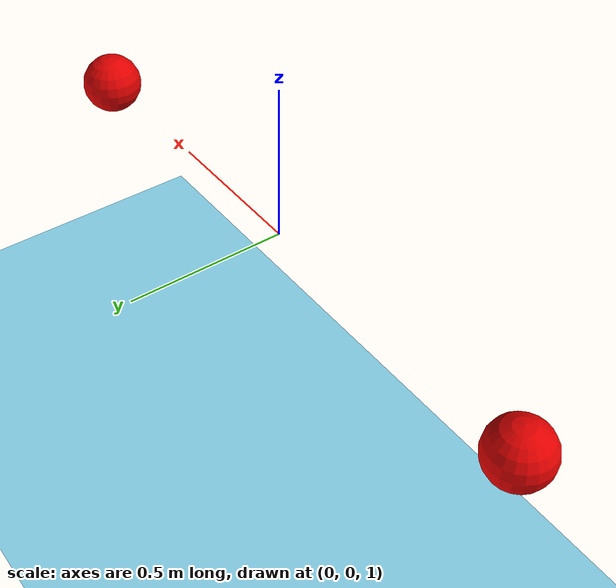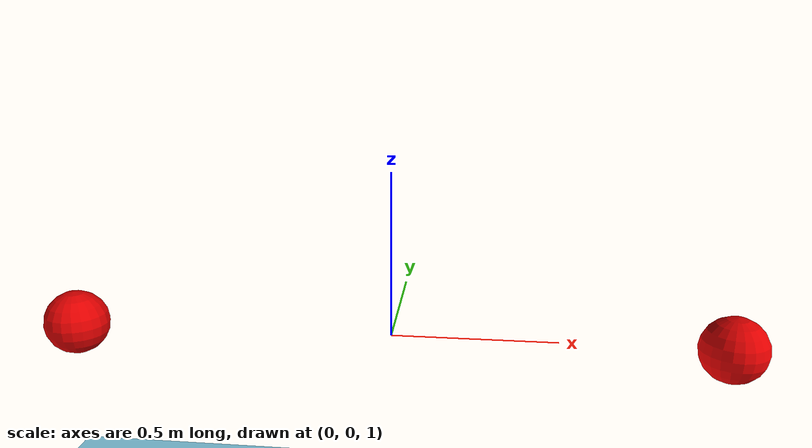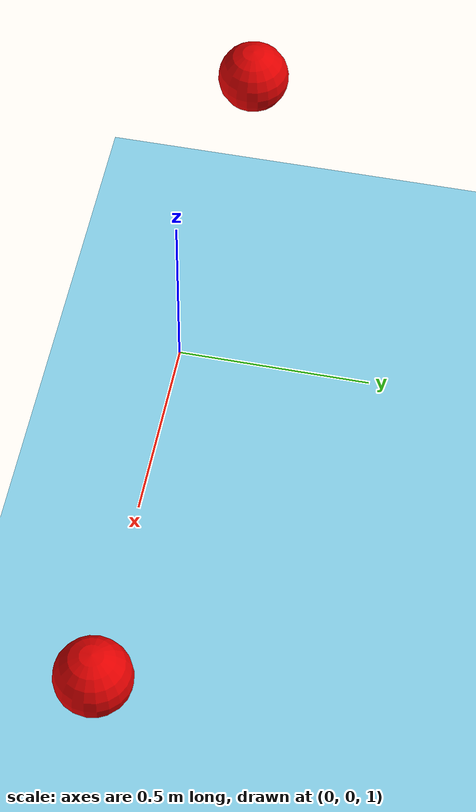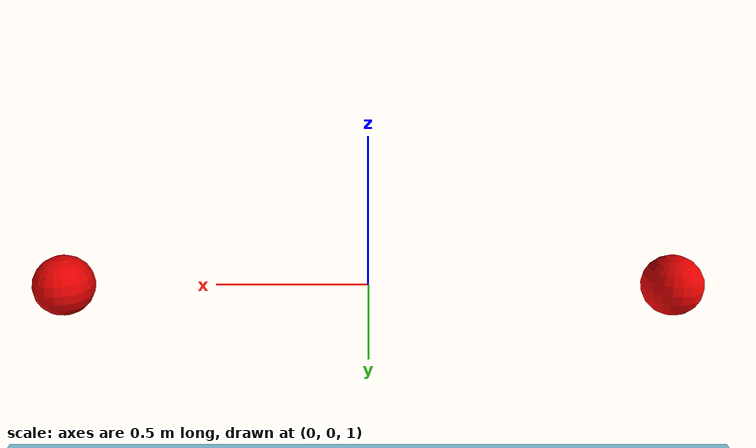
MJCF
<mujoco>

  <compiler angle="radian" coordinate="local" inertiafromgeom="true"/>

  <default>
    <joint armature="0" damping="1" limited="false"/>
    <geom friction="0.5" solimp="0.99 0.99 0.01" solref="0.01 0.5"/>
  </default>

  <option gravity="0 0 -9.8" timestep="0.01"/>

  <asset>
    <!-- Define the textures -->
    <texture name="texplane" type="2d" builtin="checker" rgb1=".5 .8 .9" rgb2=".6 .9 1" width="512" height="512"/>
    <material name="MatPlane" texture="texplane" texrepeat="10 10" texuniform="true"/>

    <texture name="ball_texture" type="cube" builtin="checker" rgb1="1 0 0" rgb2="0.8 0 0" width="300" height="300"/>
    <material name="MatBall" texture="ball_texture" texrepeat="8 8"/>
  </asset>

  <worldbody>

    <!-- Light sources -->
    <light diffuse=".5 .5 .5" dir="0 0 -1" pos="0 0 3"/>

    <!-- Ground with light blue color -->
    <geom condim="3" material="MatPlane" name="ground" pos="0 0 0" size="5 5 0.1" type="plane" solref="0.001 1.0" />

    <!-- Ball setup -->
    <body name="ball1" pos="-1 0 1">
      <joint name="ball_joint1" type="free" damping="0.001"/>
      <geom name="ball_geom1" size="0.1" type="sphere" material="MatBall" density="50" solref="0.001 1.0"/>
    </body>
<body name="ball2" pos="1 0 1">
      <joint name="ball_joint2" type="free" damping="0.001"/>
      <geom name="ball_geom2" size="0.1" type="sphere" material="MatBall" density="50" solref="0.001 1.0"/>
    </body>

  </worldbody>

</mujoco>
